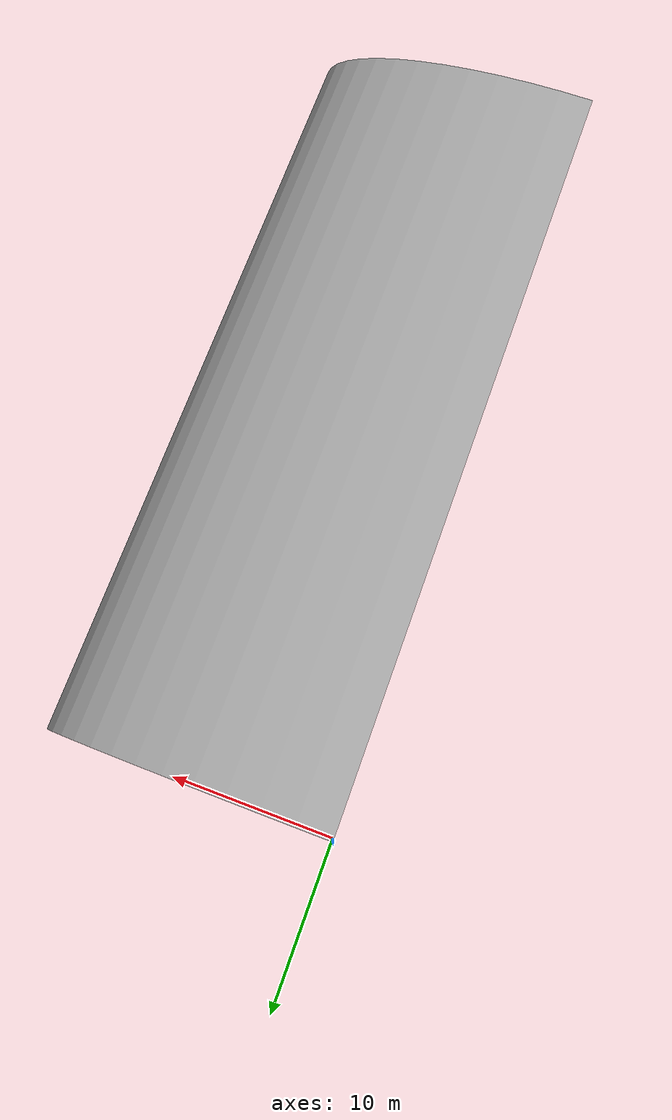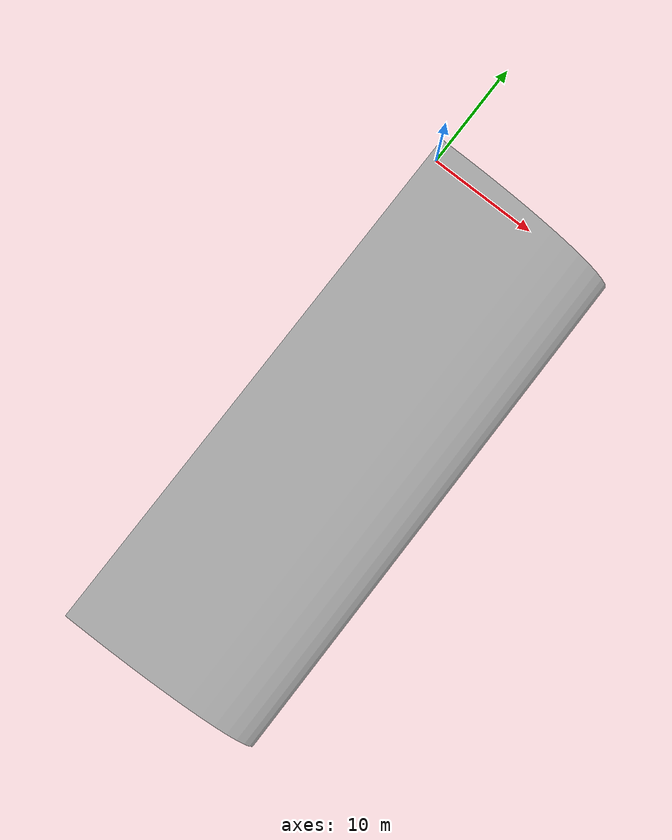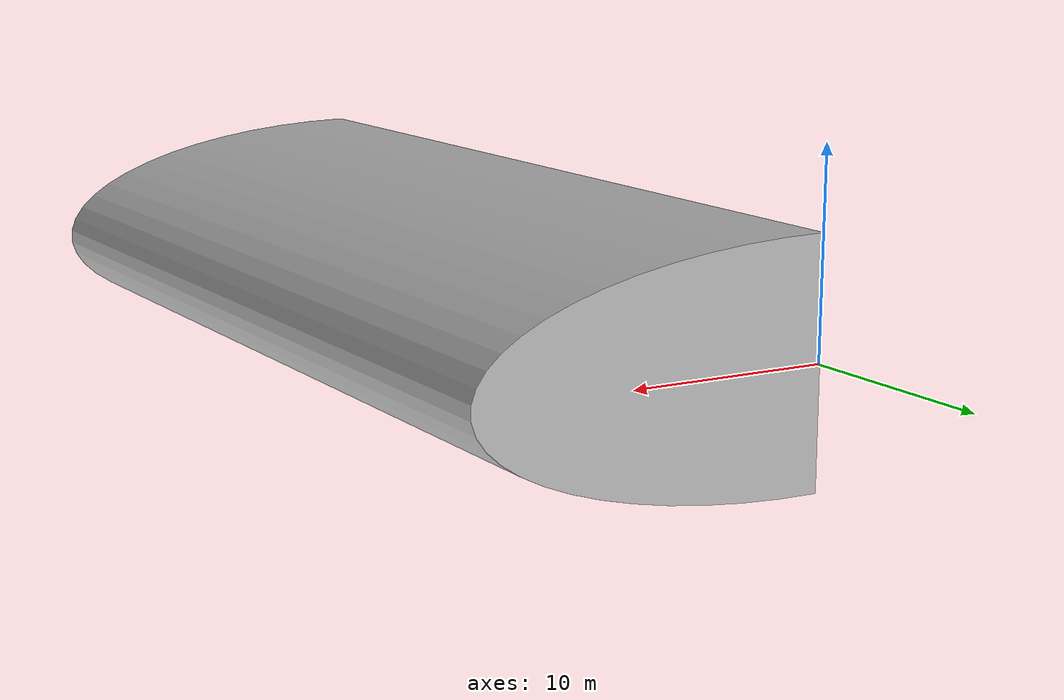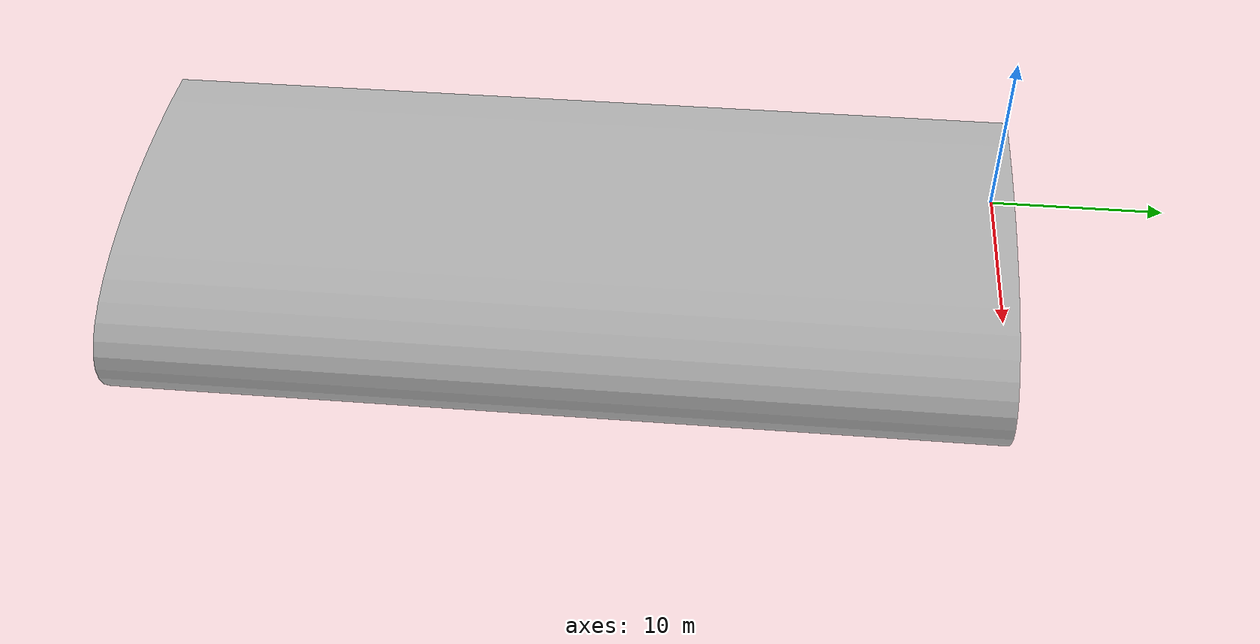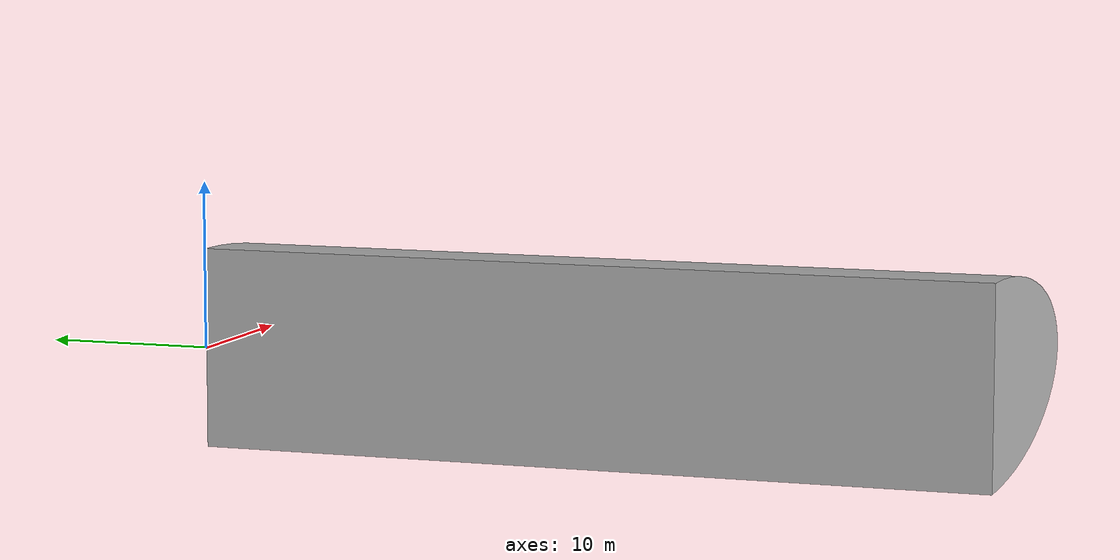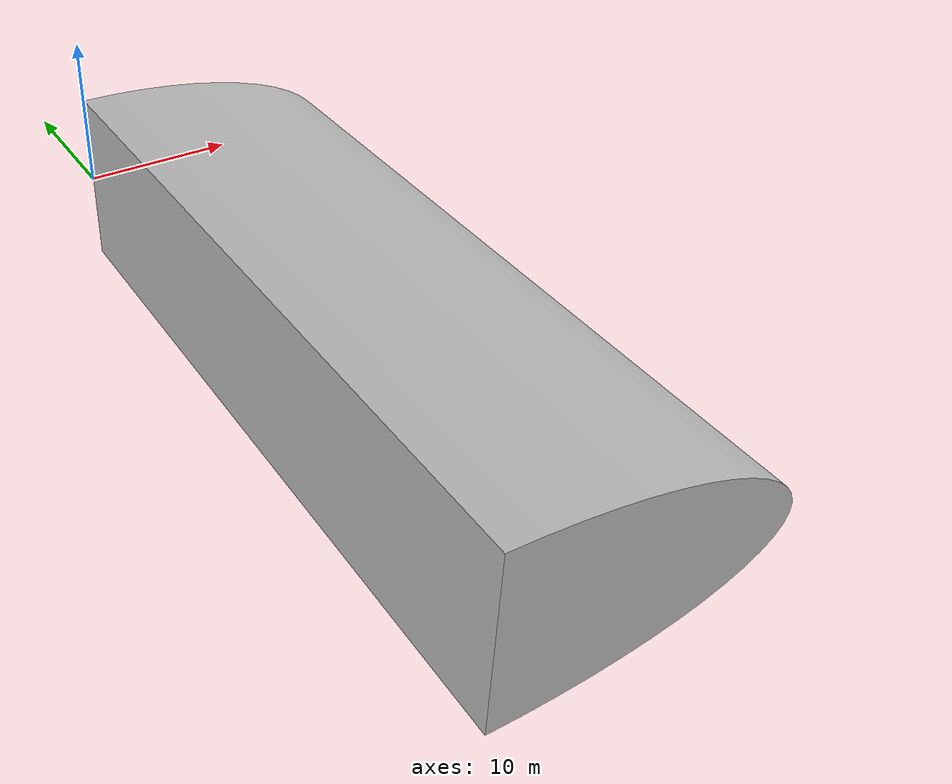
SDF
<?xml version='1.0' ?>
<sdf version="1.6">
    <model name="CubeSoft">
        <static>true</static>
        <link name="link">
            <pose>0 0 0 1.57 3.14159 0</pose>
            <collision name="collision">
                <geometry>
                    <mesh>
                        <uri>meshes/SemiCylinder_12x8.stl</uri>
                        <scale>0.003 0.001 0.004</scale>
                    </mesh>
                </geometry>
            </collision>
            <visual name="visual">
                <geometry>
                    <mesh>
                        <uri>meshes/SemiCylinder_12x8.stl</uri>
                        <scale>0.003 0.001 0.006</scale>
                    </mesh>
                </geometry>
            </visual>
        </link>
    </model>
</sdf>
